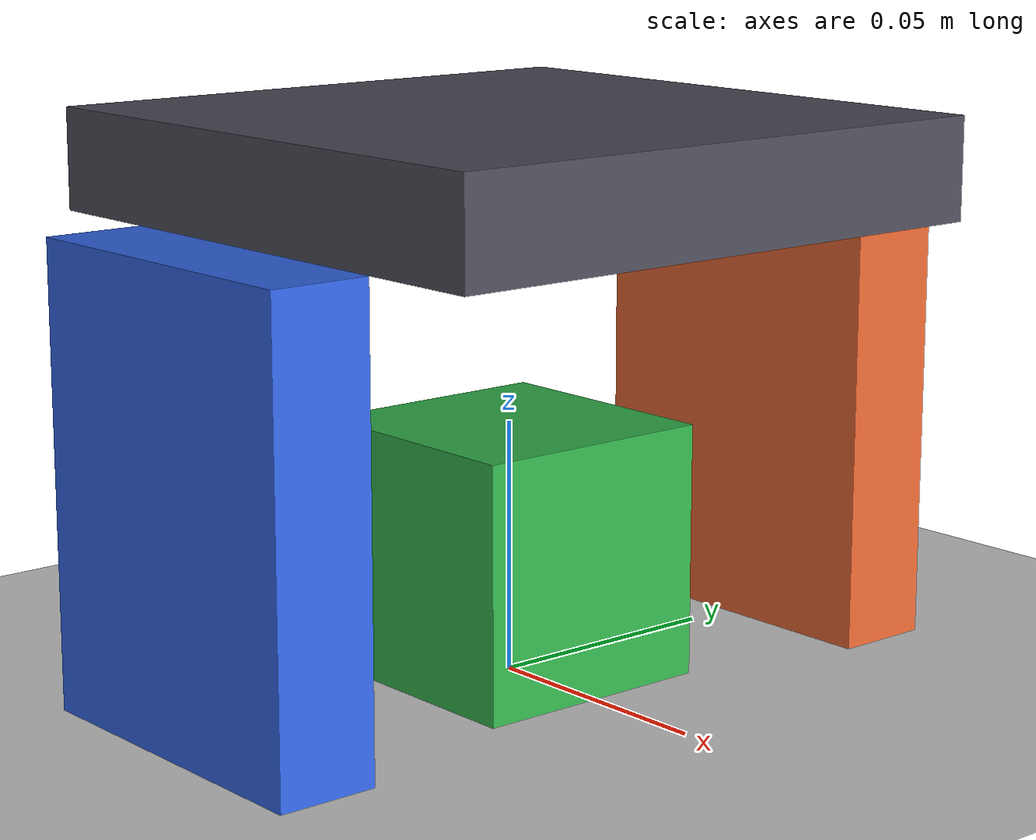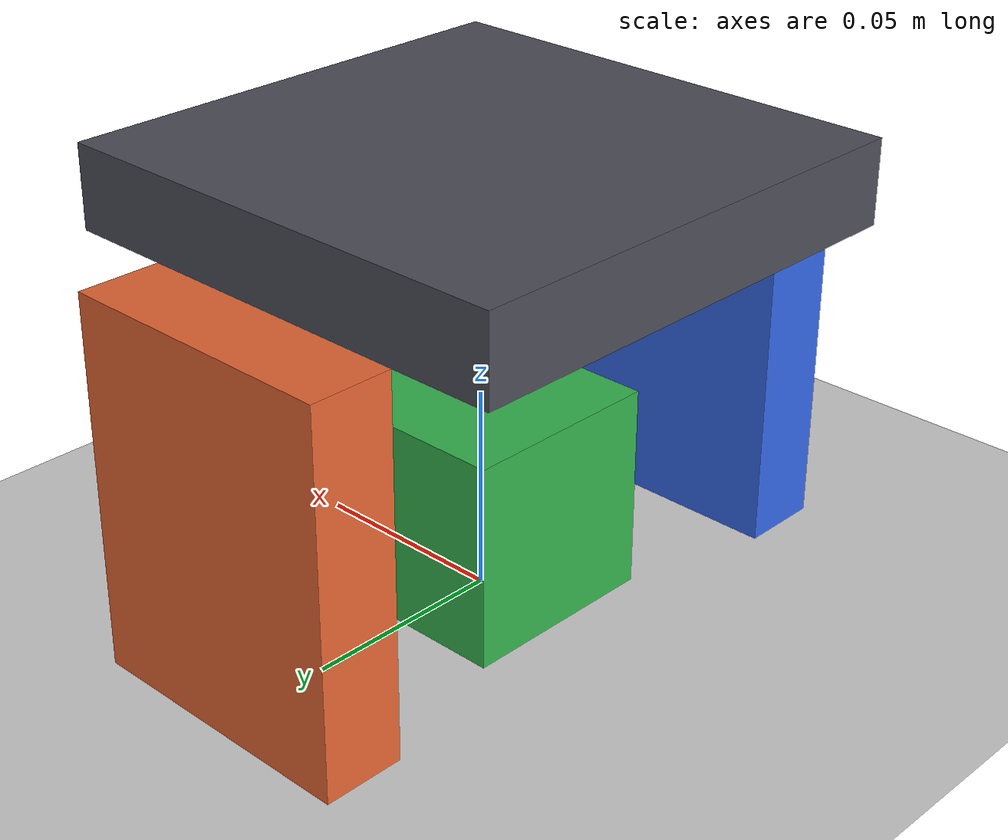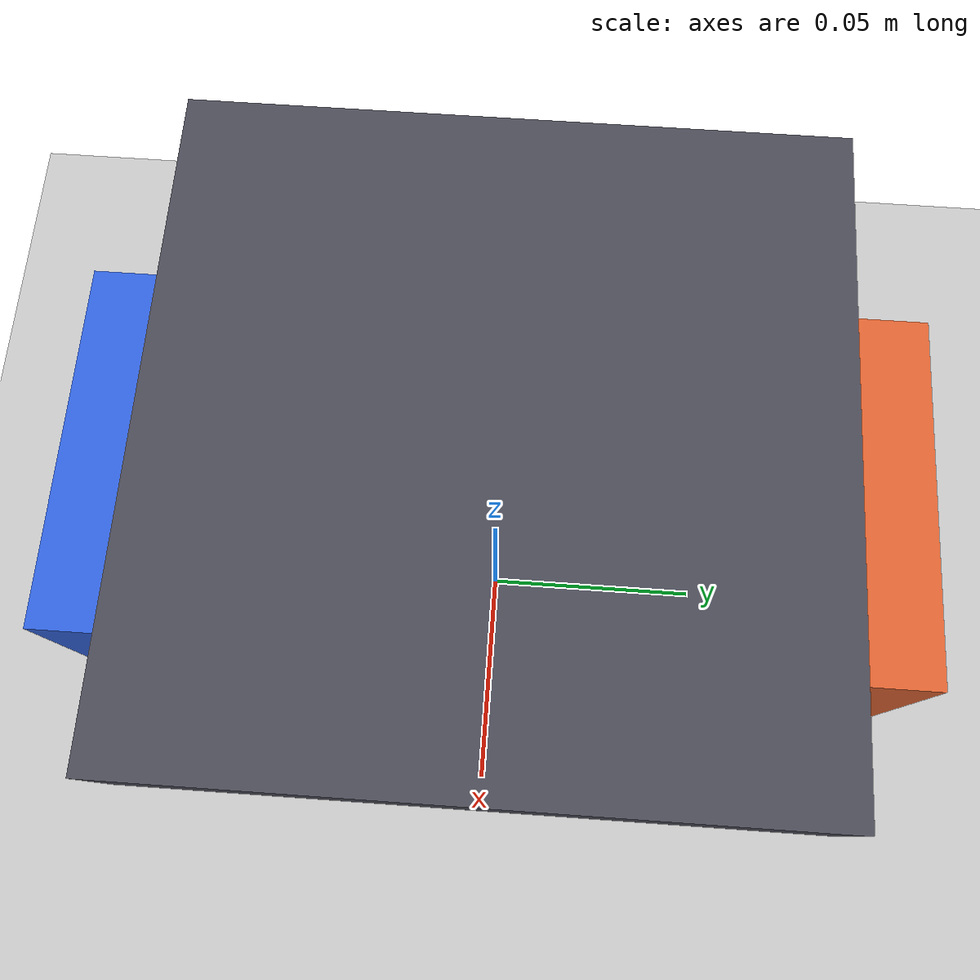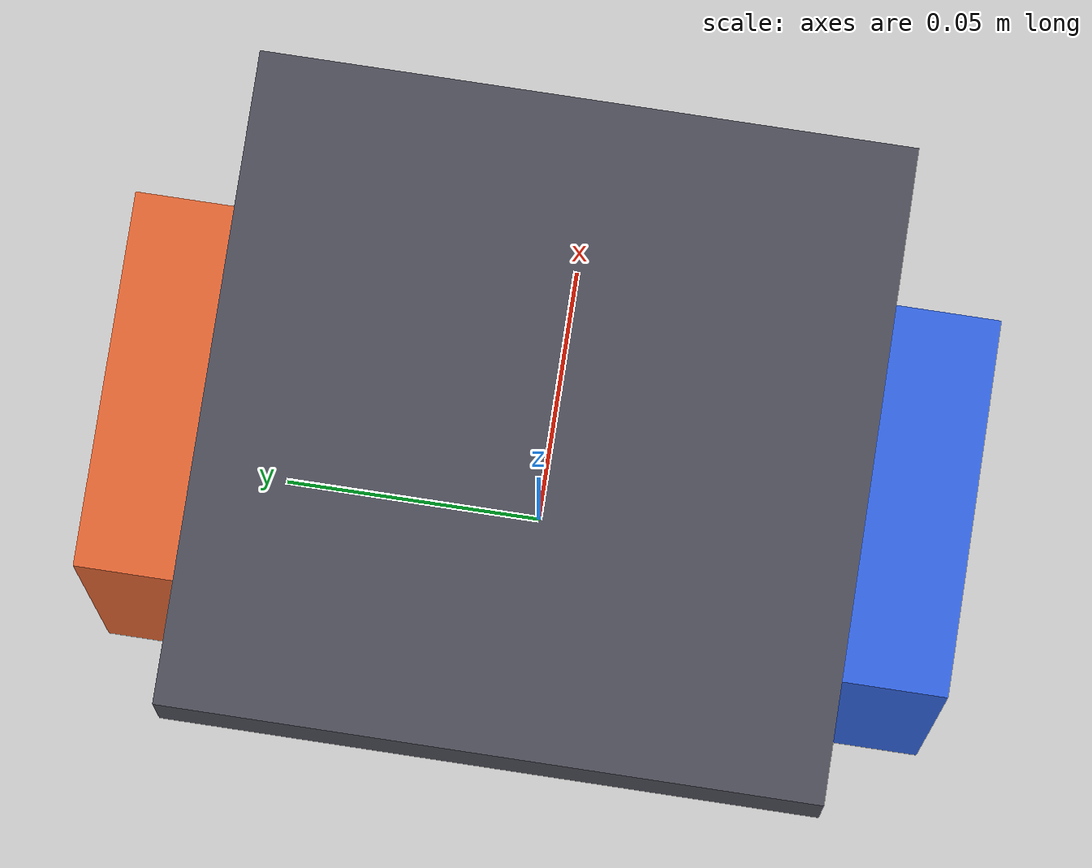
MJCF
<mujoco model="two finger gripper">
  <!-- angle="radian" 表示角度单位使用弧度。 -->
  <compiler angle="radian"/>

  <!-- timestep 是仿真步长；gravity 是世界坐标系下的重力。 -->
  <option timestep="0.002" gravity="0 0 -9.81"/>

  <!-- default 里的设置会作为下面 geom 和 joint 的默认参数。 -->
  <default>
    <!-- friction 的三个数分别对应滑动摩擦、扭转摩擦和滚动摩擦。 -->
    <!-- condim=4 表示接触约束中考虑法向、两个切向和扭转摩擦。 -->
    <geom friction="1.2 0.01 0.001" condim="4"/>

    <!-- 关节默认阻尼，帮助运动稳定下来。 -->
    <joint damping="1"/>
  </default>

  <!-- worldbody 里定义场景、物体和夹爪结构。 -->
  <worldbody>
    <!-- 灯光。 -->
    <light pos="0.5 -0.5 1.5"/>

    <!-- 地面。 -->
    <geom name="floor" type="plane" size="2 2 0.1" rgba="0.8 0.8 0.8 1"/>

    <!-- 被夹取的方块。pos 的 z=0.025，让边长 0.05m 的方块刚好放在地面上。 -->
    <body name="object" pos="0 0 0.025">
      <!-- freejoint 表示方块可以自由移动和旋转。 -->
      <freejoint name="object_free_joint"/>

      <!-- 方块碰撞体和可视化形状。mass 已被改为 0.2，用于观察质量变大后的效果。 -->
      <geom name="object_geom"
            type="box"
            size="0.025 0.025 0.025"
            mass="0.2"
            rgba="0.2 0.7 0.3 1"/>
    </body>

    <!-- hand 是夹爪整体。 -->
    <body name="hand" pos="0 0 0">
      <!-- hand_lift 是滑动关节，沿 z 轴上下移动整个夹爪。 -->
      <joint name="hand_lift"
             type="slide"
             axis="0 0 1"
             range="0 0.2"/>

      <!-- 手掌几何体。 -->
      <geom name="palm_geom"
            type="box"
            pos="0 0 0.10"
            size="0.06 0.06 0.01"
            mass="1"
            rgba="0.3 0.3 0.35 1"/>

      <!-- 左手指，初始放在 y 正方向。 -->
      <body name="left_finger" pos="0 0.07 0.045">
        <!-- 左手指沿 y 负方向滑动，向方块靠近。 -->
        <joint name="left_finger_joint"
               type="slide"
               axis="0 -1 0"
               range="0 0.045"/>

        <!-- 左手指几何体。 -->
        <geom name="left_finger_geom"
              type="box"
              size="0.035 0.01 0.045"
              mass="0.1"
              rgba="0.9 0.4 0.2 1"/>
      </body>

      <!-- 右手指，初始放在 y 负方向。 -->
      <body name="right_finger" pos="0 -0.07 0.045">
        <!-- 右手指沿 y 正方向滑动，向方块靠近。 -->
        <joint name="right_finger_joint"
               type="slide"
               axis="0 1 0"
               range="0 0.045"/>

        <!-- 右手指几何体。 -->
        <geom name="right_finger_geom"
              type="box"
              size="0.035 0.01 0.045"
              mass="0.1"
              rgba="0.2 0.4 0.9 1"/>
      </body>
    </body>
  </worldbody>

  <!-- actuator 定义可被 data.ctrl 控制的执行器。 -->
  <actuator>
    <!-- ctrl[0] 控制 hand_lift，让整个夹爪上下移动。 -->
    <position name="lift_actuator"
              joint="hand_lift"
              kp="500"
              kv="30"
              ctrlrange="0 0.2"/>

    <!-- ctrl[1] 控制左手指闭合。 -->
    <position name="left_finger_actuator"
              joint="left_finger_joint"
              kp="120"
              kv="5"
              ctrlrange="0 0.045"/>

    <!-- ctrl[2] 控制右手指闭合。 -->
    <position name="right_finger_actuator"
              joint="right_finger_joint"
              kp="120"
              kv="5"
              ctrlrange="0 0.045"/>
  </actuator>
</mujoco>
